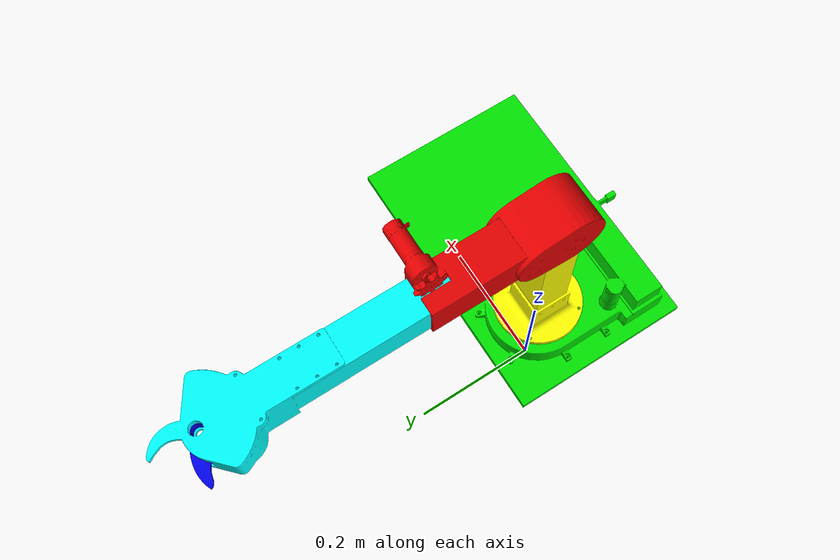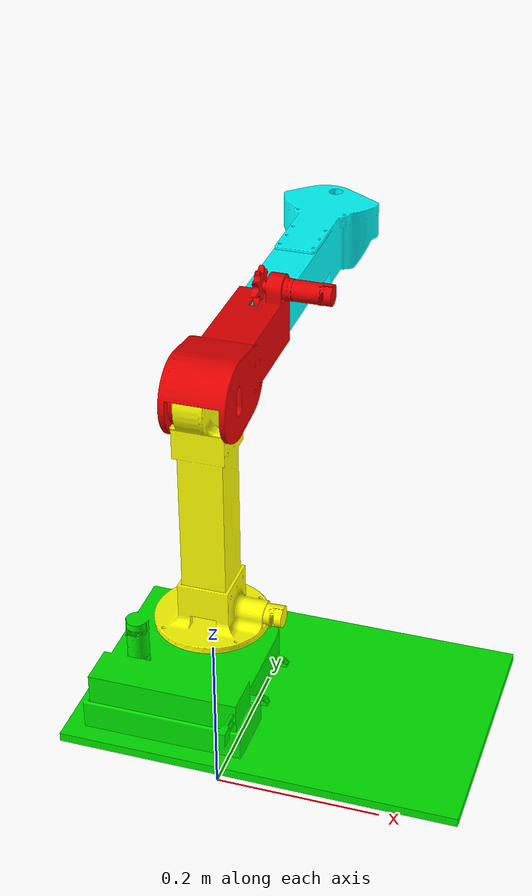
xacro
<?xml version="1.0"?>
<robot name="cocoabot" xmlns:xacro="http://www.ros.org/wiki/xacro">

    <!-- Inclusão do arquivo material.xacro -->
    <xacro:include filename="$(find cocoabot_description)/urdf/material.xacro"/>

    <!-- Link: world -->
    <link name="world">
        <visual>
            <geometry>
                <box size="0.0 0.0 0.0"/>
            </geometry>
            <origin rpy="0 0 0" xyz="0 0 0"/>
            <material name="green"/>
        </visual>
    </link>

    <!-- Joint 0: world para base_link -->
    <joint name="joint_0" type="fixed">
        <parent link="world"/>
        <child link="base_link"/>
        <origin xyz="0 0 0.23" rpy="0 0 0"/>
    </joint>

    <link name="base_link">
        <inertial>
            <origin xyz="0.060747 -0.065229 -0.023328" rpy="0 0 0"/>
            <mass value="2.1545"/>
            <inertia ixx="0.0092706" ixy="1.4604E-05" ixz="-4.3192E-06" iyy="0.021653" iyz="1.839E-05" izz="0.030482"/>
        </inertial>
        <visual>
            <geometry>
                <mesh filename="package://cocoabot_description/meshes/base_link.STL"/>
            </geometry>
            <origin xyz="0 0 0" rpy="0 0 0"/>
            <material name="green"/>
        </visual>
    </link>

    <!-- Joint 1: base_link para plat_link -->
    <joint name="plat_joint" type="revolute">
        <origin xyz="0 0 0" rpy="0 0 0"/>
        <parent link="base_link"/>
        <child link="plat_link"/>
        <axis xyz="0 0 -1"/>
        <limit effort="8.826" velocity="1.047" lower="-3.142" upper="3.142"/>
    </joint>

    <link name="plat_link">
        <inertial>
            <origin xyz="0.0025853 0.00017376 0.11426" rpy="0 0 0"/>
            <mass value="0.46474"/>
            <inertia ixx="0.00081273" ixy="9.984E-08" ixz="-4.9772E-06" iyy="0.00070326" iyz="2.4908E-06" izz="0.00041364"/>
        </inertial>
        <visual>
            <geometry>
                <mesh filename="package://cocoabot_description/meshes/plat_link.STL"/>
            </geometry>
            <origin xyz="0 0 0" rpy="0 0 0"/>
            <material name="yellow"/>
        </visual>
    </link>

    <!-- Joint 2: plat_link para rot_link -->
    <joint name="rot_joint" type="revolute">
        <origin xyz="0 0 0.3007" rpy="1.5708 0 1.5708"/>
        <parent link="plat_link"/>
        <child link="rot_link"/>
        <axis xyz="0 0 -1"/>
        <limit effort="8.826" velocity="0.1" lower="-1.092" upper="0.234"/>
    </joint>

    <link name="rot_link">
        <inertial>
            <origin xyz="0.073219 0.0064394 0.0036707" rpy="0 0 0"/>
            <mass value="0.35324"/>
            <inertia ixx="0.00028201" ixy="-6.3602E-06" ixz="-6.0104E-06" iyy="0.00053113" iyz="5.5646E-06" izz="0.00060695"/>
        </inertial>
        <visual>
            <geometry>
                <mesh filename="package://cocoabot_description/meshes/rot_link.STL"/>
            </geometry>
            <origin xyz="0 0 0" rpy="0 0 0"/>
            <material name="red"/>
        </visual>
    </link>

    <!-- Joint 3: rot_link para prism_link -->
    <joint name="prism_joint" type="prismatic">
        <origin xyz="0.045 0 0" rpy="-1.5708 0 -1.5708"/>
        <parent link="rot_link"/>
        <child link="prism_link"/>
        <axis xyz="0 0 -1"/>
        <limit effort="1.766" velocity="0.01" lower="0.0144" upper="-0.080"/>
    </joint>

    <link name="prism_link">
        <inertial>
            <origin xyz="0.00042829 8.1635E-05 0.32046" rpy="0 0 0"/>
            <mass value="0.41724"/>
            <inertia ixx="0.0013879" ixy="6.4804E-07" ixz="4.5861E-05" iyy="0.0012367" iyz="-8.3826E-06" izz="0.00032076"/>
        </inertial>
        <visual>
            <geometry>
                <mesh filename="package://cocoabot_description/meshes/prism_link.STL"/>
            </geometry>
            <origin xyz="0 0 0" rpy="0 0 0"/>
            <material name="cyan"/>
        </visual>
    </link>

    <!-- Joint 4: prism_link para lamina_link -->
    <joint name="lamina_joint" type="revolute">
        <origin xyz="0 -0.00020606 0.43266" rpy="0 0 0"/>
        <parent link="prism_link"/>
        <child link="lamina_link"/>
        <axis xyz="-1 0 0"/>
        <limit effort="8.826" velocity="2.514" lower="-1.087" upper="0"/>
    </joint>

    <link name="lamina_link">
        <inertial>
            <origin xyz="-0.0082117 -0.0073153 -0.020024" rpy="0 0 0"/>
            <mass value="0.027825"/>
            <inertia ixx="1.7938E-05" ixy="-5.7863E-08" ixz="-4.3107E-08" iyy="8.7838E-06" iyz="-3.1098E-06" izz="9.4353E-06"/>
        </inertial>
        <visual>
            <geometry>
                <mesh filename="package://cocoabot_description/meshes/lamina_link.STL"/>
            </geometry>
            <origin xyz="0 0 0" rpy="0 0 0"/>
            <material name="blue"/>
        </visual>
    </link>

</robot>

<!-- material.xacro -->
<robot xmlns:xacro="http://www.ros.org/wiki/xacro">
    <!-- Material Preto -->
    <material name="black">
        <color rgba="0.0 0.0 0.0 1.0"/>
    </material>

    <!-- Material Azul -->
    <material name="blue">
        <color rgba="0.0 0.0 0.9 1.0"/>
    </material>

    <!-- Material Verde -->
    <material name="green">
        <color rgba="0.0 0.9 0.0 1.0"/>
    </material>

    <!-- Material Vermelho -->
    <material name="red">
        <color rgba="0.9 0.0 0.0 1.0"/>
    </material>

    <!-- Material Branco -->
    <material name="white">
        <color rgba="1.0 1.0 1.0 1.0"/>
    </material>

    <!-- Material Ciano -->
    <material name="cyan">
        <color rgba="0.0 1.0 1.0 1.0"/>
    </material>

    <!-- Material Amarelo -->
    <material name="yellow">
        <color rgba="1.0 1.0 0.0 1.0"/>
    </material>

</robot>
